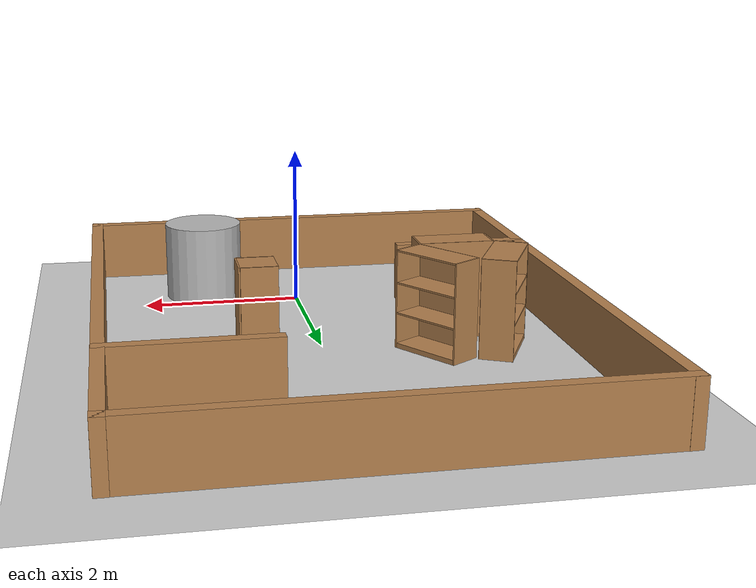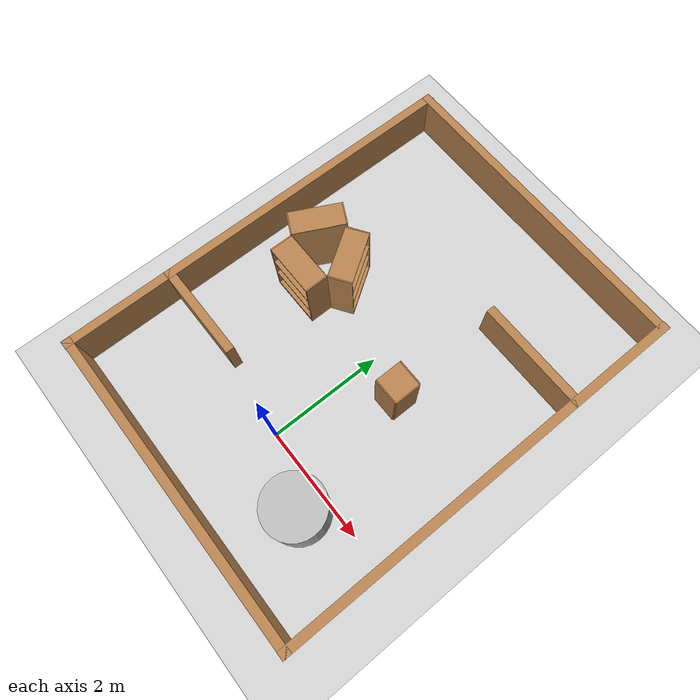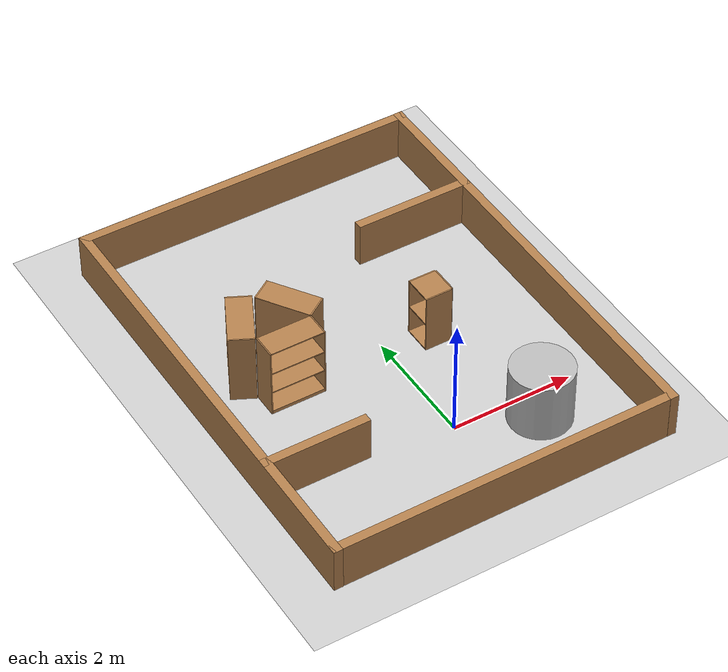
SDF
<sdf version="1.6">
 <world name="default">
  <light name="sun" type="directional">
   <pose>0 0 10 0 -0 0</pose>
   <diffuse>0.8 0.8 0.8 1</diffuse>
   <specular>0.2 0.2 0.2 1</specular>
   <attenuation>
    <range>1000</range>
    <constant>0.9</constant>
    <linear>0.01</linear>
    <quadratic>0.001</quadratic>
   </attenuation>
   <direction>0.5 0.1 -0.9</direction>
  </light>
  <scene><ambient>0.4 0.4 0.4 1</ambient><background>0.7 0.7 0.7 1</background><shadows>1</shadows></scene>
  <physics name="default_physics" default="0" type="ode">
   <max_step_size>0.01</max_step_size>
   <real_time_factor>1</real_time_factor>
   <real_time_update_rate>100</real_time_update_rate>
  </physics>
  <gravity>0 0 -9.8</gravity>
  <magnetic_field>6e-06 2.3e-05 -4.2e-05</magnetic_field>
  <atmosphere type="adiabatic"/>
  <spherical_coordinates>
   <surface_model>EARTH_WGS84</surface_model>
   <latitude_deg>0</latitude_deg>
   <longitude_deg>0</longitude_deg>
   <elevation>0</elevation>
   <heading_deg>0</heading_deg>
  </spherical_coordinates>
  <light name="user_directional_light_0" type="directional">
   <pose>-9.50202 0.956116 1 0 -0 0</pose>
   <diffuse>0.5 0.5 0.5 1</diffuse>
   <specular>0.1 0.1 0.1 1</specular>
   <direction>0.1 0.1 -0.9</direction>
   <attenuation>
    <range>20</range>
    <constant>0.5</constant>
    <linear>0.01</linear>
    <quadratic>0.001</quadratic>
   </attenuation>
  </light>
  <light name="user_directional_light_1" type="directional">
   <pose>-9.5041 0.983455 1 0 -0 0</pose>
   <diffuse>0.5 0.5 0.5 1</diffuse>
   <specular>0.1 0.1 0.1 1</specular>
   <direction>0.1 0.1 -0.9</direction>
   <attenuation>
    <range>20</range>
    <constant>0.5</constant>
    <linear>0.01</linear>
    <quadratic>0.001</quadratic>
   </attenuation>
  </light>
  <light name="user_directional_light_2" type="directional">
   <pose>-9.51255 0.961869 1 0 -0 0</pose>
   <diffuse>0.5 0.5 0.5 1</diffuse>
   <specular>0.1 0.1 0.1 1</specular>
   <direction>0.1 0.1 -0.9</direction>
   <attenuation>
    <range>20</range>
    <constant>0.5</constant>
    <linear>0.01</linear>
    <quadratic>0.001</quadratic>
   </attenuation>
  </light>
  <light name="user_directional_light_3" type="directional">
   <pose>-9.55321 0.938992 1 0 -0 0</pose>
   <diffuse>0.5 0.5 0.5 1</diffuse>
   <specular>0.1 0.1 0.1 1</specular>
   <direction>0.1 0.1 -0.9</direction>
   <attenuation>
    <range>20</range>
    <constant>0.5</constant>
    <linear>0.01</linear>
    <quadratic>0.001</quadratic>
   </attenuation>
  </light>
  <model name="ground_plane">
   <static>1</static>
   <link name="link">
    <collision name="collision">
     <geometry><plane><normal>0 0 1</normal><size>100 100</size></plane></geometry>
     <surface><friction><ode><mu>100</mu><mu2>50</mu2></ode></friction></surface>
    </collision>
    <visual name="visual">
     <cast_shadows>0</cast_shadows>
     <geometry><plane><normal>0 0 1</normal><size>100 100</size></plane></geometry>
     <material>
      <script><uri>file://media/materials/scripts/gazebo.material</uri><name>Gazebo/Grey</name></script>
     </material>
    </visual>
   </link>
   <pose>3.63562 1.30612 0 0 -0 0</pose>
  </model>
  <light name="user_directional_light_4" type="directional">
   <pose>-9.50999 0.938219 1 0 -0 0</pose>
   <diffuse>0.5 0.5 0.5 1</diffuse>
   <specular>0.1 0.1 0.1 1</specular>
   <direction>0.1 0.1 -0.9</direction>
   <attenuation>
    <range>20</range>
    <constant>0.5</constant>
    <linear>0.01</linear>
    <quadratic>0.001</quadratic>
   </attenuation>
  </light>
  <model name="arn_env1">
   <link name="Wall_10">
    <pose>-2.17783 -1.6685 -1 0 -0 0</pose>
    <inertial>
     <mass>1</mass>
     <inertia><ixx>1</ixx><ixy>0</ixy><ixz>0</ixz><iyy>1</iyy><iyz>0</iyz><izz>1</izz></inertia>
    </inertial>
    <visual name="Wall_10_Visual">
     <pose>0 0 1.25 0 -0 0</pose>
     <geometry><box><size>1.75 0.15 1</size></box></geometry>
     <material>
      <script><uri>file://media/materials/scripts/gazebo.material</uri><name>Gazebo/Wood</name></script>
      <ambient>1 1 1 1</ambient>
      <shader type="pixel"><normal_map>__default__</normal_map></shader>
      <diffuse>0.7 0.7 0.7 1</diffuse>
      <specular>0.01 0.01 0.01 1</specular>
      <emissive>0 0 0 1</emissive>
     </material>
     <meta><layer>0</layer></meta>
    </visual>
    <collision name="Wall_10_Collision">
     <pose>0 0 1.25 0 -0 0</pose>
     <geometry><box><size>1.75 0.15 2.5</size></box></geometry>
     <surface>
      <friction>
       <ode><mu>1</mu><mu2>1</mu2><fdir1>0 0 0</fdir1><slip1>0</slip1><slip2>0</slip2></ode>
       <torsional>
        <coefficient>1</coefficient>
        <patch_radius>0</patch_radius>
        <surface_radius>0</surface_radius>
        <use_patch_radius>1</use_patch_radius>
        <ode><slip>0</slip></ode>
       </torsional>
      </friction>
      <bounce><restitution_coefficient>0</restitution_coefficient><threshold>1e+06</threshold></bounce>
      <contact>
       <collide_without_contact>0</collide_without_contact>
       <collide_without_contact_bitmask>1</collide_without_contact_bitmask>
       <collide_bitmask>1</collide_bitmask>
       <ode>
        <soft_cfm>0</soft_cfm>
        <soft_erp>0.2</soft_erp>
        <kp>1e+13</kp>
        <kd>1</kd>
        <max_vel>0.01</max_vel>
        <min_depth>0</min_depth>
       </ode>
       <bullet>
        <split_impulse>1</split_impulse>
        <split_impulse_penetration_threshold>-0.01</split_impulse_penetration_threshold>
        <soft_cfm>0</soft_cfm>
        <soft_erp>0.2</soft_erp>
        <kp>1e+13</kp>
        <kd>1</kd>
       </bullet>
      </contact>
     </surface>
    </collision>
   </link>
   <link name="Wall_12">
    <pose>1.69694 1.90673 -1 0 -0 3.14159</pose>
    <inertial>
     <mass>1</mass>
     <inertia><ixx>1</ixx><ixy>0</ixy><ixz>0</ixz><iyy>1</iyy><iyz>0</iyz><izz>1</izz></inertia>
    </inertial>
    <visual name="Wall_12_Visual">
     <pose>0 0 1.25 0 -0 0</pose>
     <geometry><box><size>2 0.15 1</size></box></geometry>
     <material>
      <script><uri>file://media/materials/scripts/gazebo.material</uri><name>Gazebo/Wood</name></script>
      <ambient>1 1 1 1</ambient>
      <shader type="pixel"><normal_map>__default__</normal_map></shader>
      <diffuse>0.7 0.7 0.7 1</diffuse>
      <specular>0.01 0.01 0.01 1</specular>
      <emissive>0 0 0 1</emissive>
     </material>
     <meta><layer>0</layer></meta>
    </visual>
    <collision name="Wall_12_Collision">
     <pose>0 0 1.25 0 -0 0</pose>
     <geometry><box><size>2 0.15 2.5</size></box></geometry>
     <surface>
      <friction>
       <ode><mu>1</mu><mu2>1</mu2><fdir1>0 0 0</fdir1><slip1>0</slip1><slip2>0</slip2></ode>
       <torsional>
        <coefficient>1</coefficient>
        <patch_radius>0</patch_radius>
        <surface_radius>0</surface_radius>
        <use_patch_radius>1</use_patch_radius>
        <ode><slip>0</slip></ode>
       </torsional>
      </friction>
      <bounce><restitution_coefficient>0</restitution_coefficient><threshold>1e+06</threshold></bounce>
      <contact>
       <collide_without_contact>0</collide_without_contact>
       <collide_without_contact_bitmask>1</collide_without_contact_bitmask>
       <collide_bitmask>1</collide_bitmask>
       <ode>
        <soft_cfm>0</soft_cfm>
        <soft_erp>0.2</soft_erp>
        <kp>1e+13</kp>
        <kd>1</kd>
        <max_vel>0.01</max_vel>
        <min_depth>0</min_depth>
       </ode>
       <bullet>
        <split_impulse>1</split_impulse>
        <split_impulse_penetration_threshold>-0.01</split_impulse_penetration_threshold>
        <soft_cfm>0</soft_cfm>
        <soft_erp>0.2</soft_erp>
        <kp>1e+13</kp>
        <kd>1</kd>
       </bullet>
      </contact>
     </surface>
    </collision>
   </link>
   <link name="Wall_4">
    <pose>-0.174556 -3.54686 -1 0 -0 0</pose>
    <inertial>
     <mass>1</mass>
     <inertia><ixx>1</ixx><ixy>0</ixy><ixz>0</ixz><iyy>1</iyy><iyz>0</iyz><izz>1</izz></inertia>
    </inertial>
    <visual name="Wall_4_Visual">
     <pose>0 0 1.25 0 -0 0</pose>
     <geometry><box><size>5.75 0.15 1</size></box></geometry>
     <material>
      <script><uri>file://media/materials/scripts/gazebo.material</uri><name>Gazebo/Wood</name></script>
      <ambient>1 1 1 1</ambient>
      <shader type="pixel"><normal_map>__default__</normal_map></shader>
      <diffuse>0.7 0.7 0.7 1</diffuse>
      <specular>0.01 0.01 0.01 1</specular>
      <emissive>0 0 0 1</emissive>
     </material>
     <meta><layer>0</layer></meta>
    </visual>
    <collision name="Wall_4_Collision">
     <pose>0 0 1.25 0 -0 0</pose>
     <geometry><box><size>5.75 0.15 2.5</size></box></geometry>
     <surface>
      <friction>
       <ode><mu>1</mu><mu2>1</mu2><fdir1>0 0 0</fdir1><slip1>0</slip1><slip2>0</slip2></ode>
       <torsional>
        <coefficient>1</coefficient>
        <patch_radius>0</patch_radius>
        <surface_radius>0</surface_radius>
        <use_patch_radius>1</use_patch_radius>
        <ode><slip>0</slip></ode>
       </torsional>
      </friction>
      <bounce><restitution_coefficient>0</restitution_coefficient><threshold>1e+06</threshold></bounce>
      <contact>
       <collide_without_contact>0</collide_without_contact>
       <collide_without_contact_bitmask>1</collide_without_contact_bitmask>
       <collide_bitmask>1</collide_bitmask>
       <ode>
        <soft_cfm>0</soft_cfm>
        <soft_erp>0.2</soft_erp>
        <kp>1e+13</kp>
        <kd>1</kd>
        <max_vel>0.01</max_vel>
        <min_depth>0</min_depth>
       </ode>
       <bullet>
        <split_impulse>1</split_impulse>
        <split_impulse_penetration_threshold>-0.01</split_impulse_penetration_threshold>
        <soft_cfm>0</soft_cfm>
        <soft_erp>0.2</soft_erp>
        <kp>1e+13</kp>
        <kd>1</kd>
       </bullet>
      </contact>
     </surface>
    </collision>
   </link>
   <link name="Wall_4_clone">
    <pose>-0.172112 3.77995 -1 0 -0 0</pose>
    <inertial>
     <mass>1</mass>
     <inertia><ixx>1</ixx><ixy>0</ixy><ixz>0</ixz><iyy>1</iyy><iyz>0</iyz><izz>1</izz></inertia>
    </inertial>
    <visual name="Wall_4_Visual">
     <pose>0 0 1.25 0 -0 0</pose>
     <geometry><box><size>5.75 0.15 1</size></box></geometry>
     <material>
      <script><uri>file://media/materials/scripts/gazebo.material</uri><name>Gazebo/Wood</name></script>
      <ambient>1 1 1 1</ambient>
      <shader type="pixel"><normal_map>__default__</normal_map></shader>
      <diffuse>0.7 0.7 0.7 1</diffuse>
      <specular>0.01 0.01 0.01 1</specular>
      <emissive>0 0 0 1</emissive>
     </material>
     <meta><layer>0</layer></meta>
    </visual>
    <collision name="Wall_4_Collision">
     <pose>0 0 1.25 0 -0 0</pose>
     <geometry><box><size>5.75 0.15 2.5</size></box></geometry>
     <surface>
      <friction>
       <ode><mu>1</mu><mu2>1</mu2><fdir1>0 0 0</fdir1><slip1>0</slip1><slip2>0</slip2></ode>
       <torsional>
        <coefficient>1</coefficient>
        <patch_radius>0</patch_radius>
        <surface_radius>0</surface_radius>
        <use_patch_radius>1</use_patch_radius>
        <ode><slip>0</slip></ode>
       </torsional>
      </friction>
      <bounce><restitution_coefficient>0</restitution_coefficient><threshold>1e+06</threshold></bounce>
      <contact>
       <collide_without_contact>0</collide_without_contact>
       <collide_without_contact_bitmask>1</collide_without_contact_bitmask>
       <collide_bitmask>1</collide_bitmask>
       <ode>
        <soft_cfm>0</soft_cfm>
        <soft_erp>0.2</soft_erp>
        <kp>1e+13</kp>
        <kd>1</kd>
        <max_vel>0.01</max_vel>
        <min_depth>0</min_depth>
       </ode>
       <bullet>
        <split_impulse>1</split_impulse>
        <split_impulse_penetration_threshold>-0.01</split_impulse_penetration_threshold>
        <soft_cfm>0</soft_cfm>
        <soft_erp>0.2</soft_erp>
        <kp>1e+13</kp>
        <kd>1</kd>
       </bullet>
      </contact>
     </surface>
    </collision>
   </link>
   <link name="Wall_6">
    <pose>-2.97739 0.11496 -1 0 -0 1.57045</pose>
    <inertial>
     <mass>1</mass>
     <inertia><ixx>1</ixx><ixy>0</ixy><ixz>0</ixz><iyy>1</iyy><iyz>0</iyz><izz>1</izz></inertia>
    </inertial>
    <visual name="Wall_6_Visual">
     <pose>0 0 1.25 0 -0 0</pose>
     <geometry><box><size>7.48534 0.15 1</size></box></geometry>
     <material>
      <script><uri>file://media/materials/scripts/gazebo.material</uri><name>Gazebo/Wood</name></script>
      <ambient>1 1 1 1</ambient>
      <shader type="pixel"><normal_map>__default__</normal_map></shader>
      <diffuse>0.7 0.7 0.7 1</diffuse>
      <specular>0.01 0.01 0.01 1</specular>
      <emissive>0 0 0 1</emissive>
     </material>
     <meta><layer>0</layer></meta>
    </visual>
    <collision name="Wall_6_Collision">
     <pose>0 0 1.25 0 -0 0</pose>
     <geometry><box><size>7.48534 0.15 2.5</size></box></geometry>
     <surface>
      <friction>
       <ode><mu>1</mu><mu2>1</mu2><fdir1>0 0 0</fdir1><slip1>0</slip1><slip2>0</slip2></ode>
       <torsional>
        <coefficient>1</coefficient>
        <patch_radius>0</patch_radius>
        <surface_radius>0</surface_radius>
        <use_patch_radius>1</use_patch_radius>
        <ode><slip>0</slip></ode>
       </torsional>
      </friction>
      <bounce><restitution_coefficient>0</restitution_coefficient><threshold>1e+06</threshold></bounce>
      <contact>
       <collide_without_contact>0</collide_without_contact>
       <collide_without_contact_bitmask>1</collide_without_contact_bitmask>
       <collide_bitmask>1</collide_bitmask>
       <ode>
        <soft_cfm>0</soft_cfm>
        <soft_erp>0.2</soft_erp>
        <kp>1e+13</kp>
        <kd>1</kd>
        <max_vel>0.01</max_vel>
        <min_depth>0</min_depth>
       </ode>
       <bullet>
        <split_impulse>1</split_impulse>
        <split_impulse_penetration_threshold>-0.01</split_impulse_penetration_threshold>
        <soft_cfm>0</soft_cfm>
        <soft_erp>0.2</soft_erp>
        <kp>1e+13</kp>
        <kd>1</kd>
       </bullet>
      </contact>
     </surface>
    </collision>
   </link>
   <link name="Wall_6_clone">
    <pose>2.62604 0.119071 -1 0 -0 1.57045</pose>
    <inertial>
     <mass>1</mass>
     <inertia><ixx>1</ixx><ixy>0</ixy><ixz>0</ixz><iyy>1</iyy><iyz>0</iyz><izz>1</izz></inertia>
    </inertial>
    <visual name="Wall_6_Visual">
     <pose>0 0 1.25 0 -0 0</pose>
     <geometry><box><size>7.48534 0.15 1</size></box></geometry>
     <material>
      <script><uri>file://media/materials/scripts/gazebo.material</uri><name>Gazebo/Wood</name></script>
      <ambient>1 1 1 1</ambient>
      <shader type="pixel"><normal_map>__default__</normal_map></shader>
      <diffuse>0.7 0.7 0.7 1</diffuse>
      <specular>0.01 0.01 0.01 1</specular>
      <emissive>0 0 0 1</emissive>
     </material>
     <meta><layer>0</layer></meta>
    </visual>
    <collision name="Wall_6_Collision">
     <pose>0 0 1.25 0 -0 0</pose>
     <geometry><box><size>7.48534 0.15 2.5</size></box></geometry>
     <surface>
      <friction>
       <ode><mu>1</mu><mu2>1</mu2><fdir1>0 0 0</fdir1><slip1>0</slip1><slip2>0</slip2></ode>
       <torsional>
        <coefficient>1</coefficient>
        <patch_radius>0</patch_radius>
        <surface_radius>0</surface_radius>
        <use_patch_radius>1</use_patch_radius>
        <ode><slip>0</slip></ode>
       </torsional>
      </friction>
      <bounce><restitution_coefficient>0</restitution_coefficient><threshold>1e+06</threshold></bounce>
      <contact>
       <collide_without_contact>0</collide_without_contact>
       <collide_without_contact_bitmask>1</collide_without_contact_bitmask>
       <collide_bitmask>1</collide_bitmask>
       <ode>
        <soft_cfm>0</soft_cfm>
        <soft_erp>0.2</soft_erp>
        <kp>1e+13</kp>
        <kd>1</kd>
        <max_vel>0.01</max_vel>
        <min_depth>0</min_depth>
       </ode>
       <bullet>
        <split_impulse>1</split_impulse>
        <split_impulse_penetration_threshold>-0.01</split_impulse_penetration_threshold>
        <soft_cfm>0</soft_cfm>
        <soft_erp>0.2</soft_erp>
        <kp>1e+13</kp>
        <kd>1</kd>
       </bullet>
      </contact>
     </surface>
    </collision>
   </link>
   <static>1</static>
   <pose>-0.02261 1.88504 0 0 -0 0</pose>
  </model>
  <model name="bookshelf">
   <static>1</static>
   <link name="link">
    <inertial><mass>1</mass></inertial>
    <collision name="back">
     <pose>0 0.005 0.6 0 -0 0</pose>
     <geometry><box><size>0.9 0.01 1.2</size></box></geometry>
    </collision>
    <visual name="visual1">
     <pose>0 0.005 0.6 0 -0 0</pose>
     <geometry><box><size>0.9 0.01 1.2</size></box></geometry>
     <material>
      <script><uri>file://media/materials/scripts/gazebo.material</uri><name>Gazebo/Wood</name></script>
     </material>
    </visual>
    <collision name="left_side">
     <pose>0.45 -0.195 0.6 0 -0 0</pose>
     <geometry><box><size>0.02 0.4 1.2</size></box></geometry>
    </collision>
    <visual name="visual2">
     <pose>0.45 -0.195 0.6 0 -0 0</pose>
     <geometry><box><size>0.02 0.4 1.2</size></box></geometry>
     <material>
      <script><uri>file://media/materials/scripts/gazebo.material</uri><name>Gazebo/Wood</name></script>
     </material>
    </visual>
    <collision name="right_side">
     <pose>-0.45 -0.195 0.6 0 -0 0</pose>
     <geometry><box><size>0.02 0.4 1.2</size></box></geometry>
    </collision>
    <visual name="visual3">
     <pose>-0.45 -0.195 0.6 0 -0 0</pose>
     <geometry><box><size>0.02 0.4 1.2</size></box></geometry>
     <material>
      <script><uri>file://media/materials/scripts/gazebo.material</uri><name>Gazebo/Wood</name></script>
     </material>
    </visual>
    <collision name="bottom">
     <pose>0 -0.195 0.03 0 -0 0</pose>
     <geometry><box><size>0.88 0.4 0.06</size></box></geometry>
    </collision>
    <visual name="visual4">
     <pose>0 -0.195 0.03 0 -0 0</pose>
     <geometry><box><size>0.88 0.4 0.06</size></box></geometry>
     <material>
      <script><uri>file://media/materials/scripts/gazebo.material</uri><name>Gazebo/Wood</name></script>
     </material>
    </visual>
    <collision name="top">
     <pose>0 -0.195 1.19 0 -0 0</pose>
     <geometry><box><size>0.88 0.4 0.02</size></box></geometry>
    </collision>
    <visual name="visual5">
     <pose>0 -0.195 1.19 0 -0 0</pose>
     <geometry><box><size>0.88 0.4 0.02</size></box></geometry>
     <material>
      <script><uri>file://media/materials/scripts/gazebo.material</uri><name>Gazebo/Wood</name></script>
     </material>
    </visual>
    <collision name="low_shelf">
     <pose>0 -0.195 0.43 0 -0 0</pose>
     <geometry><box><size>0.88 0.4 0.02</size></box></geometry>
    </collision>
    <visual name="visual6">
     <pose>0 -0.195 0.43 0 -0 0</pose>
     <geometry><box><size>0.88 0.4 0.02</size></box></geometry>
     <material>
      <script><uri>file://media/materials/scripts/gazebo.material</uri><name>Gazebo/Wood</name></script>
     </material>
    </visual>
    <collision name="high_shelf">
     <pose>0 -0.195 0.8 0 -0 0</pose>
     <geometry><box><size>0.88 0.4 0.02</size></box></geometry>
    </collision>
    <visual name="visual7">
     <pose>0 -0.195 0.8 0 -0 0</pose>
     <geometry><box><size>0.88 0.4 0.02</size></box></geometry>
     <material>
      <script><uri>file://media/materials/scripts/gazebo.material</uri><name>Gazebo/Wood</name></script>
     </material>
    </visual>
   </link>
   <pose>-1.43304 2.40846 0 0 -0 2.16003</pose>
  </model>
  <model name="bookshelf_clone">
   <static>1</static>
   <link name="link">
    <inertial><mass>1</mass></inertial>
    <collision name="back">
     <pose>0 0.005 0.6 0 -0 0</pose>
     <geometry><box><size>0.9 0.01 1.2</size></box></geometry>
    </collision>
    <visual name="visual1">
     <pose>0 0.005 0.6 0 -0 0</pose>
     <geometry><box><size>0.9 0.01 1.2</size></box></geometry>
     <material>
      <script><uri>file://media/materials/scripts/gazebo.material</uri><name>Gazebo/Wood</name></script>
     </material>
    </visual>
    <collision name="left_side">
     <pose>0.45 -0.195 0.6 0 -0 0</pose>
     <geometry><box><size>0.02 0.4 1.2</size></box></geometry>
    </collision>
    <visual name="visual2">
     <pose>0.45 -0.195 0.6 0 -0 0</pose>
     <geometry><box><size>0.02 0.4 1.2</size></box></geometry>
     <material>
      <script><uri>file://media/materials/scripts/gazebo.material</uri><name>Gazebo/Wood</name></script>
     </material>
    </visual>
    <collision name="right_side">
     <pose>-0.45 -0.195 0.6 0 -0 0</pose>
     <geometry><box><size>0.02 0.4 1.2</size></box></geometry>
    </collision>
    <visual name="visual3">
     <pose>-0.45 -0.195 0.6 0 -0 0</pose>
     <geometry><box><size>0.02 0.4 1.2</size></box></geometry>
     <material>
      <script><uri>file://media/materials/scripts/gazebo.material</uri><name>Gazebo/Wood</name></script>
     </material>
    </visual>
    <collision name="bottom">
     <pose>0 -0.195 0.03 0 -0 0</pose>
     <geometry><box><size>0.88 0.4 0.06</size></box></geometry>
    </collision>
    <visual name="visual4">
     <pose>0 -0.195 0.03 0 -0 0</pose>
     <geometry><box><size>0.88 0.4 0.06</size></box></geometry>
     <material>
      <script><uri>file://media/materials/scripts/gazebo.material</uri><name>Gazebo/Wood</name></script>
     </material>
    </visual>
    <collision name="top">
     <pose>0 -0.195 1.19 0 -0 0</pose>
     <geometry><box><size>0.88 0.4 0.02</size></box></geometry>
    </collision>
    <visual name="visual5">
     <pose>0 -0.195 1.19 0 -0 0</pose>
     <geometry><box><size>0.88 0.4 0.02</size></box></geometry>
     <material>
      <script><uri>file://media/materials/scripts/gazebo.material</uri><name>Gazebo/Wood</name></script>
     </material>
    </visual>
    <collision name="low_shelf">
     <pose>0 -0.195 0.43 0 -0 0</pose>
     <geometry><box><size>0.88 0.4 0.02</size></box></geometry>
    </collision>
    <visual name="visual6">
     <pose>0 -0.195 0.43 0 -0 0</pose>
     <geometry><box><size>0.88 0.4 0.02</size></box></geometry>
     <material>
      <script><uri>file://media/materials/scripts/gazebo.material</uri><name>Gazebo/Wood</name></script>
     </material>
    </visual>
    <collision name="high_shelf">
     <pose>0 -0.195 0.8 0 -0 0</pose>
     <geometry><box><size>0.88 0.4 0.02</size></box></geometry>
    </collision>
    <visual name="visual7">
     <pose>0 -0.195 0.8 0 -0 0</pose>
     <geometry><box><size>0.88 0.4 0.02</size></box></geometry>
     <material>
      <script><uri>file://media/materials/scripts/gazebo.material</uri><name>Gazebo/Wood</name></script>
     </material>
    </visual>
   </link>
   <pose>-1.6434 2.01972 0 0 -0 0</pose>
  </model>
  <model name="bookshelf_clone_0">
   <static>1</static>
   <link name="link">
    <inertial><mass>1</mass></inertial>
    <collision name="back">
     <pose>0 0.005 0.6 0 -0 0</pose>
     <geometry><box><size>0.9 0.01 1.2</size></box></geometry>
    </collision>
    <visual name="visual1">
     <pose>0 0.005 0.6 0 -0 0</pose>
     <geometry><box><size>0.9 0.01 1.2</size></box></geometry>
     <material>
      <script><uri>file://media/materials/scripts/gazebo.material</uri><name>Gazebo/Wood</name></script>
     </material>
    </visual>
    <collision name="left_side">
     <pose>0.45 -0.195 0.6 0 -0 0</pose>
     <geometry><box><size>0.02 0.4 1.2</size></box></geometry>
    </collision>
    <visual name="visual2">
     <pose>0.45 -0.195 0.6 0 -0 0</pose>
     <geometry><box><size>0.02 0.4 1.2</size></box></geometry>
     <material>
      <script><uri>file://media/materials/scripts/gazebo.material</uri><name>Gazebo/Wood</name></script>
     </material>
    </visual>
    <collision name="right_side">
     <pose>-0.45 -0.195 0.6 0 -0 0</pose>
     <geometry><box><size>0.02 0.4 1.2</size></box></geometry>
    </collision>
    <visual name="visual3">
     <pose>-0.45 -0.195 0.6 0 -0 0</pose>
     <geometry><box><size>0.02 0.4 1.2</size></box></geometry>
     <material>
      <script><uri>file://media/materials/scripts/gazebo.material</uri><name>Gazebo/Wood</name></script>
     </material>
    </visual>
    <collision name="bottom">
     <pose>0 -0.195 0.03 0 -0 0</pose>
     <geometry><box><size>0.88 0.4 0.06</size></box></geometry>
    </collision>
    <visual name="visual4">
     <pose>0 -0.195 0.03 0 -0 0</pose>
     <geometry><box><size>0.88 0.4 0.06</size></box></geometry>
     <material>
      <script><uri>file://media/materials/scripts/gazebo.material</uri><name>Gazebo/Wood</name></script>
     </material>
    </visual>
    <collision name="top">
     <pose>0 -0.195 1.19 0 -0 0</pose>
     <geometry><box><size>0.88 0.4 0.02</size></box></geometry>
    </collision>
    <visual name="visual5">
     <pose>0 -0.195 1.19 0 -0 0</pose>
     <geometry><box><size>0.88 0.4 0.02</size></box></geometry>
     <material>
      <script><uri>file://media/materials/scripts/gazebo.material</uri><name>Gazebo/Wood</name></script>
     </material>
    </visual>
    <collision name="low_shelf">
     <pose>0 -0.195 0.43 0 -0 0</pose>
     <geometry><box><size>0.88 0.4 0.02</size></box></geometry>
    </collision>
    <visual name="visual6">
     <pose>0 -0.195 0.43 0 -0 0</pose>
     <geometry><box><size>0.88 0.4 0.02</size></box></geometry>
     <material>
      <script><uri>file://media/materials/scripts/gazebo.material</uri><name>Gazebo/Wood</name></script>
     </material>
    </visual>
    <collision name="high_shelf">
     <pose>0 -0.195 0.8 0 -0 0</pose>
     <geometry><box><size>0.88 0.4 0.02</size></box></geometry>
    </collision>
    <visual name="visual7">
     <pose>0 -0.195 0.8 0 -0 0</pose>
     <geometry><box><size>0.88 0.4 0.02</size></box></geometry>
     <material>
      <script><uri>file://media/materials/scripts/gazebo.material</uri><name>Gazebo/Wood</name></script>
     </material>
    </visual>
   </link>
   <pose>-1.91549 2.43364 0 0 0 -2.03968</pose>
  </model>
  <model name="cabinet">
   <static>1</static>
   <link name="cabinet_bottom_plate">
    <inertial>
     <pose>0 0 -1 0 -0 0</pose>
     <inertia><ixx>2.05</ixx><ixy>0</ixy><ixz>0</ixz><iyy>2.05</iyy><iyz>0</iyz><izz>2.05</izz></inertia>
     <mass>25</mass>
    </inertial>
    <collision name="cabinet_bottom_plate_geom">
     <pose>0 0 0.01 0 -0 0</pose>
     <geometry><box><size>0.45 0.45 0.02</size></box></geometry>
    </collision>
    <visual name="cabinet_bottom_plate_geom_visual">
     <pose>0 0 0.01 0 -0 0</pose>
     <geometry><box><size>0.45 0.45 0.02</size></box></geometry>
     <material>
      <script><uri>file://media/materials/scripts/gazebo.material</uri><name>Gazebo/Wood</name></script>
     </material>
    </visual>
    <collision name="cabinet_bottom_plate_geom_cabinet_back_plate">
     <pose>0.235 0 0.51 0 -0 0</pose>
     <geometry><box><size>0.02 0.45 1.02</size></box></geometry>
    </collision>
    <visual name="cabinet_bottom_plate_geom_cabinet_back_plate_visual">
     <pose>0.235 0 0.51 0 -0 0</pose>
     <geometry><box><size>0.02 0.45 1.02</size></box></geometry>
     <material>
      <script><uri>file://media/materials/scripts/gazebo.material</uri><name>Gazebo/Wood</name></script>
     </material>
    </visual>
    <collision name="cabinet_bottom_plate_geom_cabinet_left_plate">
     <pose>0 0.235 0.51 0 -0 0</pose>
     <geometry><box><size>0.45 0.02 1.02</size></box></geometry>
    </collision>
    <visual name="cabinet_bottom_plate_geom_cabinet_left_plate_visual">
     <pose>0 0.235 0.51 0 -0 0</pose>
     <geometry><box><size>0.45 0.02 1.02</size></box></geometry>
     <material>
      <script><uri>file://media/materials/scripts/gazebo.material</uri><name>Gazebo/Wood</name></script>
     </material>
    </visual>
    <collision name="cabinet_bottom_plate_geom_cabinet_middle_plate">
     <pose>0 0 0.51 0 -0 0</pose>
     <geometry><box><size>0.45 0.45 0.02</size></box></geometry>
    </collision>
    <visual name="cabinet_bottom_plate_geom_cabinet_middle_plate_visual">
     <pose>0 0 0.51 0 -0 0</pose>
     <geometry><box><size>0.45 0.45 0.02</size></box></geometry>
     <material>
      <script><uri>file://media/materials/scripts/gazebo.material</uri><name>Gazebo/Wood</name></script>
     </material>
    </visual>
    <collision name="cabinet_bottom_plate_geom_cabinet_right_plate">
     <pose>0 -0.235 0.51 0 -0 0</pose>
     <geometry><box><size>0.45 0.02 1.02</size></box></geometry>
    </collision>
    <visual name="cabinet_bottom_plate_geom_cabinet_right_plate_visual">
     <pose>0 -0.235 0.51 0 -0 0</pose>
     <geometry><box><size>0.45 0.02 1.02</size></box></geometry>
     <material>
      <script><uri>file://media/materials/scripts/gazebo.material</uri><name>Gazebo/Wood</name></script>
     </material>
    </visual>
    <collision name="cabinet_bottom_plate_geom_cabinet_top_plate">
     <pose>0 0 1.01 0 -0 0</pose>
     <geometry><box><size>0.45 0.45 0.02</size></box></geometry>
    </collision>
    <visual name="cabinet_bottom_plate_geom_cabinet_top_plate_visual">
     <pose>0 0 1.01 0 -0 0</pose>
     <geometry><box><size>0.45 0.45 0.02</size></box></geometry>
     <material>
      <script><uri>file://media/materials/scripts/gazebo.material</uri><name>Gazebo/Wood</name></script>
     </material>
    </visual>
   </link>
   <pose>0.738782 1.83052 0 0 -0 0</pose>
  </model>
  <model name="unit_cylinder">
   <pose>1.19696 -0.430917 0.5 0 0 -5e-06</pose>
   <link name="link">
    <inertial>
     <mass>1</mass>
     <inertia><ixx>0.145833</ixx><ixy>0</ixy><ixz>0</ixz><iyy>0.145833</iyy><iyz>0</iyz><izz>0.125</izz></inertia>
    </inertial>
    <collision name="collision">
     <geometry><cylinder><radius>0.5</radius><length>1</length></cylinder></geometry>
    </collision>
    <visual name="visual">
     <geometry><cylinder><radius>0.5</radius><length>1</length></cylinder></geometry>
     <material>
      <script><name>Gazebo/Marble</name><uri>file://media/materials/scripts/gazebo.material</uri></script>
     </material>
    </visual>
   </link>
  </model>
 </world>
</sdf>
